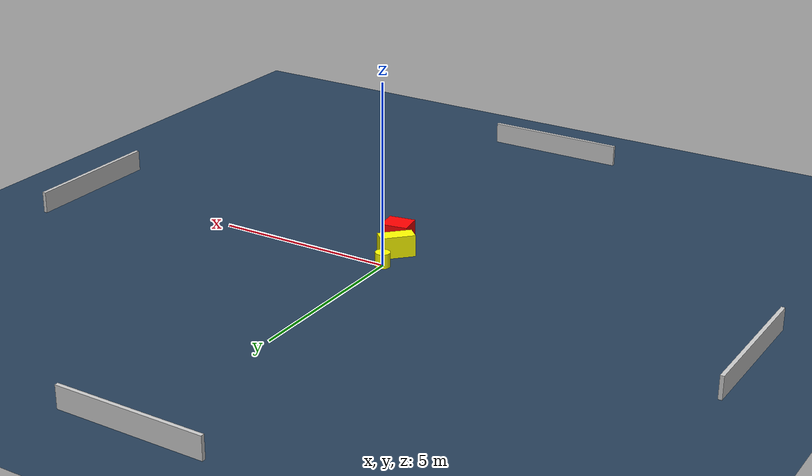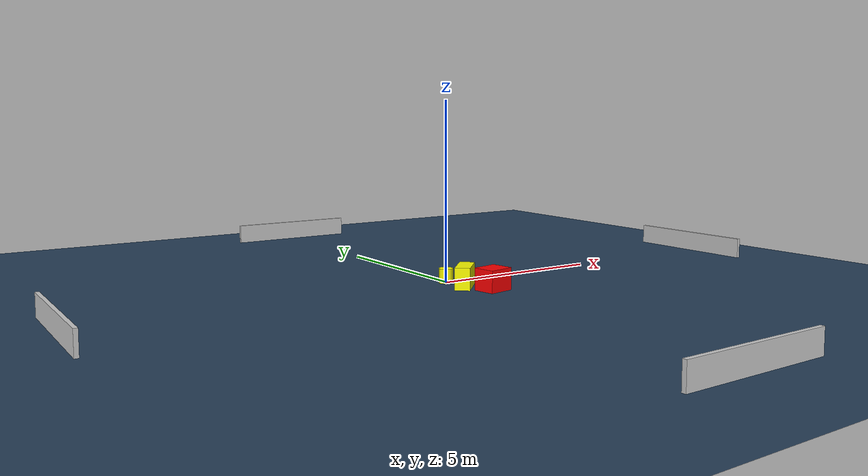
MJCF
<?xml version="1.0" ?>
<mujoco model="generated_environment">
  <option timestep="0.01" integrator="RK4" cone="elliptic"/>
  <default>
    <geom density="1"/>
  </default>
  <asset>
    <texture builtin="gradient" height="3072" name="skybox" rgb1="0.3 0.5 0.7" rgb2="0 0 0" type="skybox" width="512"/>
    <texture builtin="checker" height="300" name="groundplane" rgb1="0.2 0.3 0.4" rgb2="0.1 0.2 0.3" type="2d" width="300"/>
    <material name="groundplane" reflectance="0.2" texrepeat="5 5" texture="groundplane"/>
  </asset>
  <worldbody>
    <light dir="0 0 -1" directional="true" pos="0 0 1.5"/>
    <geom condim="3" friction="0.5 0.005 0.001" material="groundplane" name="floor" pos="0 0 0" size="0 0 0.05" type="plane"/>
    <body name="walls">
      <geom name="wall_1" condim="4" pos="-10.0 0.0 0.3" rgba="0.800000011920929 0.800000011920929 0.800000011920929 1.0" size="0.05 2.0 0.3" type="box"/>
      <geom name="wall_2" condim="4" pos="10.0 0.0 0.3" rgba="0.800000011920929 0.800000011920929 0.800000011920929 1.0" size="0.05 2.0 0.3" type="box"/>
      <geom name="wall_3" condim="4" pos="0.0 -10.0 0.3" rgba="0.800000011920929 0.800000011920929 0.800000011920929 1.0" size="2.0 0.05 0.3" type="box"/>
      <geom name="wall_4" condim="4" pos="0.0 10.0 0.3" rgba="0.800000011920929 0.800000011920929 0.800000011920929 1.0" size="2.0 0.05 0.3" type="box"/>
    </body>
    <body name="robot">
      <joint name="joint_x" type="slide" pos="0 0 0" axis="1 0 0"/>
      <joint name="joint_y" type="slide" pos="0 0 0" axis="0 1 0"/>
      <geom name="robot" type="cylinder" pos="0.0 0.0 0.2" size="0.2 0.2 0.0" mass="5.0" friction="1.0 0.005 0.0001" condim="4" rgba="1.0 1.0 0.0 1.0"/>
    </body>
    <body name="obstacle_1_movable">
      <geom name="obstacle_1_movable" condim="4" pos="0.07413107764081305 -0.7872186704661298 0.3" euler="0 0 226.4340644614228" friction="0.0 0.005 0.001" rgba="1.0 1.0 0.0 1.0" size="0.4746638244655342 0.2046658197653718 0.3" type="box" mass="0.1"/>
      <joint type="free"/>
    </body>
    <body name="obstacle_2_static">
      <geom name="obstacle_2_static" condim="4" pos="0.46359324778433625 -1.5160107032470818 0.3" euler="0 0 279.6096913299106" friction="0.0 0.005 0.001" rgba="1.0 0.0 0.0 1.0" size="0.3167174431457024 0.36871985932927204 0.3" type="box"/>
    </body>
  </worldbody>
  <actuator>
    <motor name="actuator_x" joint="joint_x" gear="1" ctrlrange="-1 1"/>
    <motor name="actuator_y" joint="joint_y" gear="1" ctrlrange="-1 1"/>
  </actuator>
</mujoco>
